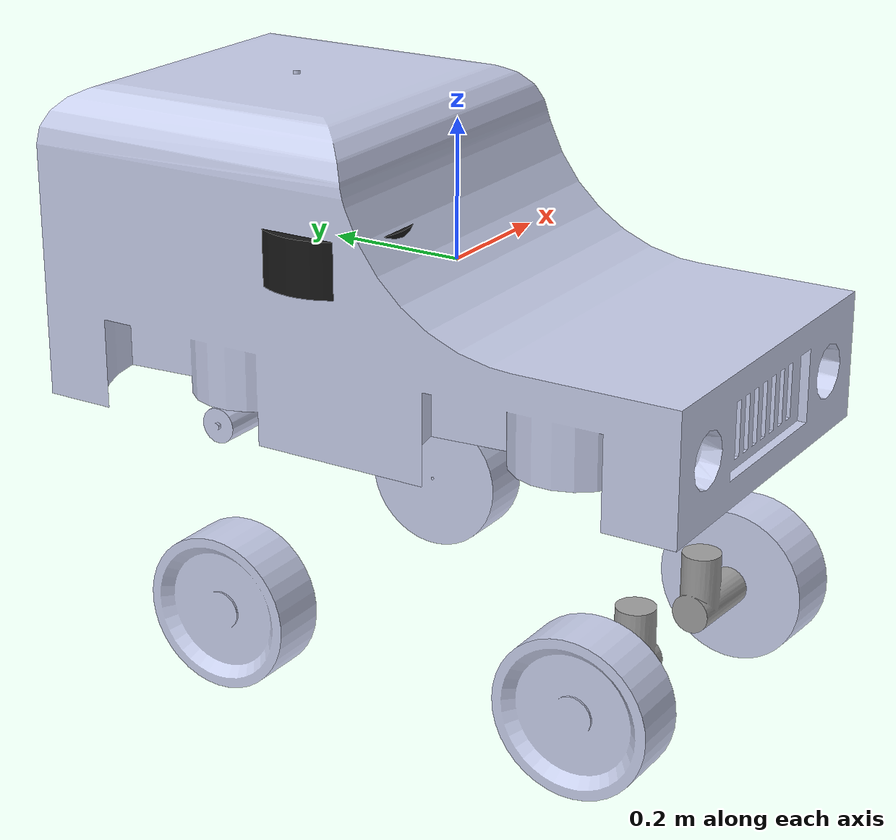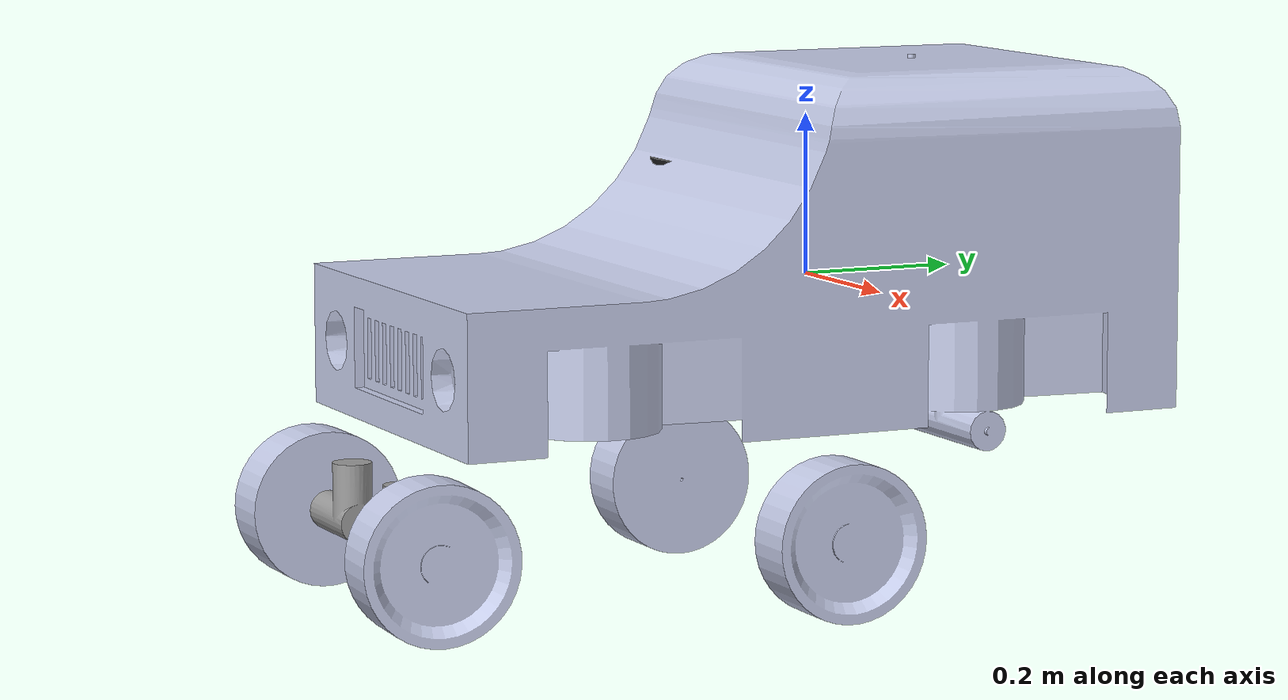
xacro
<?xml version="1.0" ?>
<robot
  name="car" xmlns:xacro="http://ros.org/wiki/xacro">
  <link
    name="base_link">
    <inertial>
      <origin
        xyz="-0.262324820535648 -0.111783715901356 0.104432242145527"
        rpy="0 0 0" />
      <mass
        value="130.703413258806" />
      <inertia
        ixx="9.48205817837113"
        ixy="0.000348135237947743"
        ixz="-0.00171562144848398"
        iyy="10.198183829728"
        iyz="1.39608345056877"
        izz="4.24086781721853" />
    </inertial>
    <visual>
      <origin
        xyz="0 0 0"
        rpy="0 0 0" />
      <geometry>
        <mesh
          filename="package://car/meshes/base_link.dae" />
      </geometry>
      <material
        name="">
        <color
          rgba="0.792156862745098 0.819607843137255 0.933333333333333 1" />
      </material>
    </visual>
    <collision>
      <origin
        xyz="0 0 0"
        rpy="0 0 0" />
      <geometry>
        <mesh
          filename="package://car/meshes/base_link.dae" />
      </geometry>
    </collision>
  </link>
  <link
    name="lidar">
    <inertial>
      <origin
        xyz="-7.04297731246584E-16 2.77555756156289E-16 0.0381059276546113"
        rpy="0 0 0" />
      <mass
        value="2.47069918222367" />
      <inertia
        ixx="0.00757222005312619"
        ixy="0"
        ixz="5.51268534132472E-17"
        iyy="0.00757222005312619"
        iyz="-1.4627147415681E-18"
        izz="0.0127540906436804" />
    </inertial>
    <visual>
      <origin
        xyz="0 0 0"
        rpy="0 0 0" />
      <geometry>
        <mesh
          filename="package://car/meshes/lidar.dae" />
      </geometry>
      <material
        name="">
        <color
          rgba="0.0980392156862745 0.0980392156862745 0.0980392156862745 1" />
      </material>
    </visual>
    <collision>
      <origin
        xyz="0 0 0"
        rpy="0 0 0" />
      <geometry>
        <mesh
          filename="package://car/meshes/lidar.dae" />
      </geometry>
    </collision>
  </link>
  <joint
    name="lidar_joint"
    type="continuous">
    <origin
      xyz="-0.26235 0.018825 0.12175"
      rpy="0 0 -1.548" />
    <parent
      link="base_link" />
    <child
      link="lidar" />
    <axis
      xyz="0 0 1" />
  </joint>
  <link
    name="left_rear_wheel">
    <inertial>
      <origin
        xyz="0 0 -0.0420011070356851"
        rpy="0 0 0" />
      <mass
        value="2.20373338840704" />
      <inertia
        ixx="0.00679098454718218"
        ixy="-2.16840434497101E-19"
        ixz="3.05543041953963E-19"
        iyy="0.00679098454718218"
        iyz="-2.61427869463836E-19"
        izz="0.0118184008419413" />
    </inertial>
    <visual>
      <origin
        xyz="0 0 0"
        rpy="0 0 0" />
      <geometry>
        <mesh
          filename="package://car/meshes/left_rear_wheel.dae" />
      </geometry>
      <material
        name="">
        <color
          rgba="0.792156862745098 0.819607843137255 0.933333333333333 1" />
      </material>
    </visual>
    <collision>
      <origin
        xyz="0 0 0"
        rpy="0 0 0" />
      <geometry>
        <mesh
          filename="package://car/meshes/left_rear_wheel.dae" />
      </geometry>
    </collision>
  </link>
  <joint
    name="left_rear_wheel_joint"
    type="continuous">
    <origin
      xyz="-0.008348 0.035982 -0.33569"
      rpy="-1.5708 -0.65705 -1.5708" />
    <parent
      link="base_link" />
    <child
      link="left_rear_wheel" />
    <axis
      xyz="0 0 1" />
  </joint>
  <link
    name="right_rear_wheel">
    <inertial>
      <origin
        xyz="2.16493489801906E-15 3.11556336285435E-15 0.034198892964327"
        rpy="0 0 0" />
      <mass
        value="2.20373338840704" />
      <inertia
        ixx="0.00679098454718218"
        ixy="7.75561000518877E-33"
        ixz="-2.24091275712152E-19"
        iyy="0.00679098454718218"
        iyz="3.17277817873348E-18"
        izz="0.0118184008419413" />
    </inertial>
    <visual>
      <origin
        xyz="0 0 0"
        rpy="0 0 0" />
      <geometry>
        <mesh
          filename="package://car/meshes/right_rear_wheel.dae" />
      </geometry>
      <material
        name="">
        <color
          rgba="0.792156862745098 0.819607843137255 0.933333333333333 1" />
      </material>
    </visual>
    <collision>
      <origin
        xyz="0 0 0"
        rpy="0 0 0" />
      <geometry>
        <mesh
          filename="package://car/meshes/right_rear_wheel.dae" />
      </geometry>
    </collision>
  </link>
  <joint
    name="right_rear_wheel_joint"
    type="continuous">
    <origin
      xyz="-0.44015 0.035982 -0.33569"
      rpy="3.1416 -1.5708 0" />
    <parent
      link="base_link" />
    <child
      link="right_rear_wheel" />
    <axis
      xyz="0 0 1" />
    <mimic
      joint="left_rear_wheel_joint"
      multiplier="1"
      offset="0" />
  </joint>
  <link
    name="left_axel">
    <inertial>
      <origin
        xyz="-0.0215345041887456 -2.20129207140207E-07 0.060619132686433"
        rpy="0 0 0" />
      <mass
        value="0.343309331013788" />
      <inertia
        ixx="0.000302393438921681"
        ixy="1.47357459795864E-09"
        ixz="0.000116959796850632"
        iyy="0.000593149233132481"
        iyz="-1.63700675940791E-09"
        izz="0.000404179391395247" />
    </inertial>
    <visual>
      <origin
        xyz="0 0 0"
        rpy="0 0 0" />
      <geometry>
        <mesh
          filename="package://car/meshes/left_axel.dae" />
      </geometry>
      <material
        name="">
        <color
          rgba="0.627450980392157 0.627450980392157 0.627450980392157 1" />
      </material>
    </visual>
    <collision>
      <origin
        xyz="0 0 0"
        rpy="0 0 0" />
      <geometry>
        <mesh
          filename="package://car/meshes/left_axel.dae" />
      </geometry>
    </collision>
  </link>
  <joint
    name="left_axel_joint"
    type="continuous">
    <origin
      xyz="-0.17345 -0.47202 -0.25925"
      rpy="3.1416 0 3.085" />
    <parent
      link="base_link" />
    <child
      link="left_axel" />
    <axis
      xyz="0 0 1" />
  </joint>
  <link
    name="left_front_wheel">
    <inertial>
      <origin
        xyz="5.55111512312578E-17 0 0.0459613313401529"
        rpy="0 0 0" />
      <mass
        value="2.20373338840703" />
      <inertia
        ixx="0.00679098454718218"
        ixy="2.71050543121376E-20"
        ixz="1.81688567186047E-18"
        iyy="0.00679098454718217"
        iyz="1.43656787854329E-18"
        izz="0.0118184008419413" />
    </inertial>
    <visual>
      <origin
        xyz="0 0 0"
        rpy="0 0 0" />
      <geometry>
        <mesh
          filename="package://car/meshes/left_front_wheel.dae" />
      </geometry>
      <material
        name="">
        <color
          rgba="0.792156862745098 0.819607843137255 0.933333333333333 1" />
      </material>
    </visual>
    <collision>
      <origin
        xyz="0 0 0"
        rpy="0 0 0" />
      <geometry>
        <mesh
          filename="package://car/meshes/left_front_wheel.dae" />
      </geometry>
    </collision>
  </link>
  <joint
    name="left_front_wheel_joint"
    type="continuous">
    <origin
      xyz="-0.077138 0 0.076439"
      rpy="1.5708 1.5458 -1.5708" />
    <parent
      link="left_axel" />
    <child
      link="left_front_wheel" />
    <axis
      xyz="0 0 1" />
    <mimic
      joint="left_rear_wheel_joint"
      multiplier="1"
      offset="0" />
  </joint>
  <link
    name="right_axel">
    <inertial>
      <origin
        xyz="-0.0215345244083817 -2.11376193104407E-07 0.0606191290142053"
        rpy="0 0 0" />
      <mass
        value="0.343309204058249" />
      <inertia
        ixx="0.000302393251783979"
        ixy="1.20006118564206E-09"
        ixz="0.000116959723773728"
        iyy="0.000593149258029488"
        iyz="-1.69500251247044E-09"
        izz="0.000404179144905995" />
    </inertial>
    <visual>
      <origin
        xyz="0 0 0"
        rpy="0 0 0" />
      <geometry>
        <mesh
          filename="package://car/meshes/right_axel.dae" />
      </geometry>
      <material
        name="">
        <color
          rgba="0.627450980392157 0.627450980392157 0.627450980392157 1" />
      </material>
    </visual>
    <collision>
      <origin
        xyz="0 0 0"
        rpy="0 0 0" />
      <geometry>
        <mesh
          filename="package://car/meshes/right_axel.dae" />
      </geometry>
    </collision>
  </link>
  <joint
    name="right_axel_joint"
    type="continuous">
    <origin
      xyz="-0.35125 -0.47202 -0.25925"
      rpy="3.1416 0 0" />
    <parent
      link="base_link" />
    <child
      link="right_axel" />
    <axis
      xyz="0 0 1" />
  </joint>
  <link
    name="right_front_wheel">
    <inertial>
      <origin
        xyz="-1.77080572427712E-14 3.66373598126302E-14 -0.0341988929643269"
        rpy="0 0 0" />
      <mass
        value="2.20373338840704" />
      <inertia
        ixx="0.00679098454718218"
        ixy="-7.98286785609436E-33"
        ixz="2.35845205968337E-19"
        iyy="0.00679098454718218"
        iyz="-5.26738303411415E-17"
        izz="0.0118184008419413" />
    </inertial>
    <visual>
      <origin
        xyz="0 0 0"
        rpy="0 0 0" />
      <geometry>
        <mesh
          filename="package://car/meshes/right_front_wheel.dae" />
      </geometry>
      <material
        name="">
        <color
          rgba="0.792156862745098 0.819607843137255 0.933333333333333 1" />
      </material>
    </visual>
    <collision>
      <origin
        xyz="0 0 0"
        rpy="0 0 0" />
      <geometry>
        <mesh
          filename="package://car/meshes/right_front_wheel.dae" />
      </geometry>
    </collision>
  </link>
  <joint
    name="right_front_wheel_joint"
    type="continuous">
    <origin
      xyz="-0.0889 0 0.076439"
      rpy="1.5708 0 1.5708" />
    <parent
      link="right_axel" />
    <child
      link="right_front_wheel" />
    <axis
      xyz="0 0 1" />
    <mimic
      joint="left_front_wheel_joint"
      multiplier="1"
      offset="0" />
  </joint>
   <ros2_control name="GazeboSystem" type="system">
    <hardware>
        <plugin>gazebo_ros2_control/GazeboSystem</plugin>
    </hardware>
 # Velocity Controllers

 <joint name="left_rear_wheel_joint">
     <command_interface name="velocity">
         <param name="min">-1000.0</param>
         <param name="max">1000.0</param>
     </command_interface>
     <state_interface name="position"/>
     <state_interface name="velocity"/>
 </joint>
<joint name="right_rear_wheel_joint">
    <command_interface name="velocity">
        <param name="min">-1000.0</param>
        <param name="max">1000.0</param>
    </command_interface>
    <state_interface name="position"/>
    <state_interface name="velocity"/>
</joint>
 <joint name="left_front_wheel_joint">
     <command_interface name="velocity">
         <param name="min">-1000.0</param>
         <param name="max">1000.0</param>
     </command_interface>
     <state_interface name="position"/>
     <state_interface name="velocity"/>
 </joint>
<joint name="right_front_wheel_joint">
    <command_interface name="velocity">
        <param name="min">-1000.0</param>
        <param name="max">1000.0</param>
    </command_interface>
    <state_interface name="position"/>
    <state_interface name="velocity"/>
</joint>

# Position Controller
 <joint name="left_axel_joint">
     <command_interface name="position">
         <param name="min">-3.14</param>
         <param name="max">3.14</param>
     </command_interface>
     <state_interface name="position"/>
     <state_interface name="velocity"/>
 </joint>
 <joint name="right_axel_joint">
     <command_interface name="position">
         <param name="min">-3.14</param>
         <param name="max">3.14</param>
     </command_interface>
     <state_interface name="position"/>
     <state_interface name="velocity"/>
 </joint>
 </ros2_control>

 <gazebo>
    <plugin filename="libgazebo_ros2_control.so" name="gazebo_ros2_control">
        <parameters>$(find car)/config/control.yaml</parameters>
    </plugin>
 </gazebo>

</robot>
